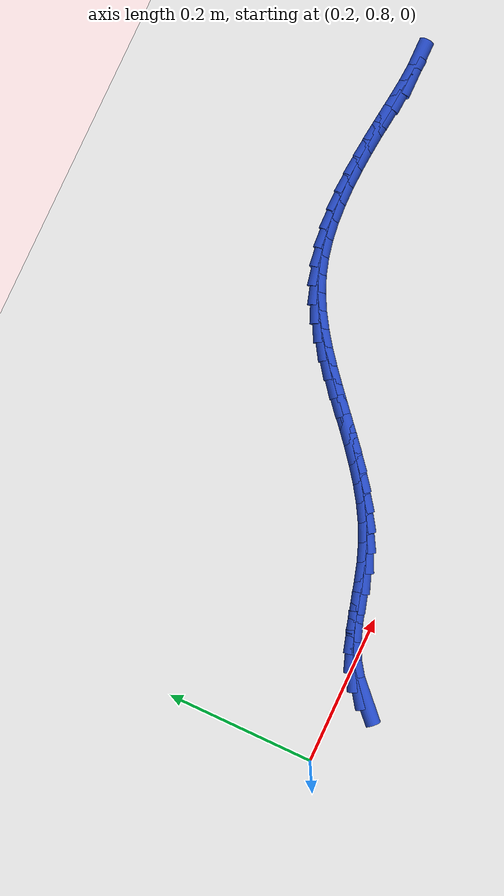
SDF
<sdf version="1.6">
 <world name="default">
  <model name="ground_plane">
   <static>1</static>
   <link name="link">
    <collision name="collision">
     <geometry><plane><normal>0 0 1</normal><size>100 100</size></plane></geometry>
     <surface><friction><ode><mu>100</mu><mu2>50</mu2></ode></friction></surface>
    </collision>
    <visual name="visual">
     <cast_shadows>0</cast_shadows>
     <geometry><plane><normal>0 0 1</normal><size>100 100</size></plane></geometry>
     <material>
      <script><uri>file://media/materials/scripts/gazebo.material</uri><name>Gazebo/WhiteGlow</name></script>
     </material>
    </visual>
   </link>
  </model>
  <model name="line">
   <link name="link_33">
    <pose>0.3068209848033757 0.7740678495897444 0.01 0 1.57 0.7680955369178402</pose>
    <collision name="collision">
     <geometry><cylinder><radius>0.01</radius><length>0.08</length></cylinder></geometry>
    </collision>
    <visual name="visual">
     <material>
      <script><name>Gazebo/Blue</name><uri>file://media/materials/scripts/gazebo.material</uri></script>
     </material>
     <geometry><cylinder><radius>0.01</radius><length>0.08</length></cylinder></geometry>
    </visual>
   </link>
   <link name="link_34">
    <pose>0.32314521265098634 0.7898367270029163 0.01 0 1.57 0.6127817458885213</pose>
    <collision name="collision">
     <geometry><cylinder><radius>0.01</radius><length>0.08</length></cylinder></geometry>
    </collision>
    <visual name="visual">
     <material>
      <script><name>Gazebo/Blue</name><uri>file://media/materials/scripts/gazebo.material</uri></script>
     </material>
     <geometry><cylinder><radius>0.01</radius><length>0.08</length></cylinder></geometry>
    </visual>
   </link>
   <link name="link_35">
    <pose>0.3418395248473881 0.8029800909614637 0.01 0 1.57 0.4562331163374501</pose>
    <collision name="collision">
     <geometry><cylinder><radius>0.01</radius><length>0.08</length></cylinder></geometry>
    </collision>
    <visual name="visual">
     <material>
      <script><name>Gazebo/Blue</name><uri>file://media/materials/scripts/gazebo.material</uri></script>
     </material>
     <geometry><cylinder><radius>0.01</radius><length>0.08</length></cylinder></geometry>
    </visual>
   </link>
   <link name="link_36">
    <pose>0.3630480060579663 0.813388491345508 0.01 0 1.57 0.34513263830318064</pose>
    <collision name="collision">
     <geometry><cylinder><radius>0.01</radius><length>0.08</length></cylinder></geometry>
    </collision>
    <visual name="visual">
     <material>
      <script><name>Gazebo/Blue</name><uri>file://media/materials/scripts/gazebo.material</uri></script>
     </material>
     <geometry><cylinder><radius>0.01</radius><length>0.08</length></cylinder></geometry>
    </visual>
   </link>
   <link name="link_37">
    <pose>0.3862714589177586 0.8217378409288465 0.01 0 1.57 0.28485016910019423</pose>
    <collision name="collision">
     <geometry><cylinder><radius>0.01</radius><length>0.08</length></cylinder></geometry>
    </collision>
    <visual name="visual">
     <material>
      <script><name>Gazebo/Blue</name><uri>file://media/materials/scripts/gazebo.material</uri></script>
     </material>
     <geometry><cylinder><radius>0.01</radius><length>0.08</length></cylinder></geometry>
    </visual>
   </link>
   <link name="link_38">
    <pose>0.41082719057515144 0.8289280763808236 0.01 0 1.57 0.2683520575616517</pose>
    <collision name="collision">
     <geometry><cylinder><radius>0.01</radius><length>0.08</length></cylinder></geometry>
    </collision>
    <visual name="visual">
     <material>
      <script><name>Gazebo/Blue</name><uri>file://media/materials/scripts/gazebo.material</uri></script>
     </material>
     <geometry><cylinder><radius>0.01</radius><length>0.08</length></cylinder></geometry>
    </visual>
   </link>
   <link name="link_39">
    <pose>0.436032494384066 0.8358591512120139 0.01 0 1.57 0.29219346268174373</pose>
    <collision name="collision">
     <geometry><cylinder><radius>0.01</radius><length>0.08</length></cylinder></geometry>
    </collision>
    <visual name="visual">
     <material>
      <script><name>Gazebo/Blue</name><uri>file://media/materials/scripts/gazebo.material</uri></script>
     </material>
     <geometry><cylinder><radius>0.01</radius><length>0.08</length></cylinder></geometry>
    </visual>
   </link>
   <link name="link_40">
    <pose>0.46120466369842356 0.843431018932993 0.01 0 1.57 0.35649394090297615</pose>
    <collision name="collision">
     <geometry><cylinder><radius>0.01</radius><length>0.08</length></cylinder></geometry>
    </collision>
    <visual name="visual">
     <material>
      <script><name>Gazebo/Blue</name><uri>file://media/materials/scripts/gazebo.material</uri></script>
     </material>
     <geometry><cylinder><radius>0.01</radius><length>0.08</length></cylinder></geometry>
    </visual>
   </link>
   <link name="link_41">
    <pose>0.4856637001289965 0.8525396941326364 0.01 0 1.57 0.44537588618805934</pose>
    <collision name="collision">
     <geometry><cylinder><radius>0.01</radius><length>0.08</length></cylinder></geometry>
    </collision>
    <visual name="visual">
     <material>
      <script><name>Gazebo/Blue</name><uri>file://media/materials/scripts/gazebo.material</uri></script>
     </material>
     <geometry><cylinder><radius>0.01</radius><length>0.08</length></cylinder></geometry>
    </visual>
   </link>
   <link name="link_42">
    <pose>0.5090043006838957 0.8636816710734182 0.01 0 1.57 0.5251237709512133</pose>
    <collision name="collision">
     <geometry><cylinder><radius>0.01</radius><length>0.08</length></cylinder></geometry>
    </collision>
    <visual name="visual">
     <material>
      <script><name>Gazebo/Blue</name><uri>file://media/materials/scripts/gazebo.material</uri></script>
     </material>
     <geometry><cylinder><radius>0.01</radius><length>0.08</length></cylinder></geometry>
    </visual>
   </link>
   <link name="link_43">
    <pose>0.5313282934927702 0.8766158663475309 0.01 0 1.57 0.5911054244074284</pose>
    <collision name="collision">
     <geometry><cylinder><radius>0.01</radius><length>0.08</length></cylinder></geometry>
    </collision>
    <visual name="visual">
     <material>
      <script><name>Gazebo/Blue</name><uri>file://media/materials/scripts/gazebo.material</uri></script>
     </material>
     <geometry><cylinder><radius>0.01</radius><length>0.08</length></cylinder></geometry>
    </visual>
   </link>
   <link name="link_44">
    <pose>0.5527922540091227 0.8910215713735858 0.01 0 1.57 0.6430733423428566</pose>
    <collision name="collision">
     <geometry><cylinder><radius>0.01</radius><length>0.08</length></cylinder></geometry>
    </collision>
    <visual name="visual">
     <material>
      <script><name>Gazebo/Blue</name><uri>file://media/materials/scripts/gazebo.material</uri></script>
     </material>
     <geometry><cylinder><radius>0.01</radius><length>0.08</length></cylinder></geometry>
    </visual>
   </link>
   <link name="link_45">
    <pose>0.5735527576864544 0.9065780775701938 0.01 0 1.57 0.6812139061971629</pose>
    <collision name="collision">
     <geometry><cylinder><radius>0.01</radius><length>0.08</length></cylinder></geometry>
    </collision>
    <visual name="visual">
     <material>
      <script><name>Gazebo/Blue</name><uri>file://media/materials/scripts/gazebo.material</uri></script>
     </material>
     <geometry><cylinder><radius>0.01</radius><length>0.08</length></cylinder></geometry>
    </visual>
   </link>
   <link name="link_46">
    <pose>0.5937663799782674 0.9229646763559662 0.01 0 1.57 0.705844480868185</pose>
    <collision name="collision">
     <geometry><cylinder><radius>0.01</radius><length>0.08</length></cylinder></geometry>
    </collision>
    <visual name="visual">
     <material>
      <script><name>Gazebo/Blue</name><uri>file://media/materials/scripts/gazebo.material</uri></script>
     </material>
     <geometry><cylinder><radius>0.01</radius><length>0.08</length></cylinder></geometry>
    </visual>
   </link>
   <link name="link_47">
    <pose>0.6135896963380639 0.9398606591495142 0.01 0 1.57 0.7172019870252846</pose>
    <collision name="collision">
     <geometry><cylinder><radius>0.01</radius><length>0.08</length></cylinder></geometry>
    </collision>
    <visual name="visual">
     <material>
      <script><name>Gazebo/Blue</name><uri>file://media/materials/scripts/gazebo.material</uri></script>
     </material>
     <geometry><cylinder><radius>0.01</radius><length>0.08</length></cylinder></geometry>
    </visual>
   </link>
   <link name="link_48">
    <pose>0.6331792822193455 0.9569453173694485 0.01 0 1.57 0.7153142622757979</pose>
    <collision name="collision">
     <geometry><cylinder><radius>0.01</radius><length>0.08</length></cylinder></geometry>
    </collision>
    <visual name="visual">
     <material>
      <script><name>Gazebo/Blue</name><uri>file://media/materials/scripts/gazebo.material</uri></script>
     </material>
     <geometry><cylinder><radius>0.01</radius><length>0.08</length></cylinder></geometry>
    </visual>
   </link>
   <link name="link_49">
    <pose>0.6526917130756145 0.9738979424343805 0.01 0 1.57 0.6999371337386757</pose>
    <collision name="collision">
     <geometry><cylinder><radius>0.01</radius><length>0.08</length></cylinder></geometry>
    </collision>
    <visual name="visual">
     <material>
      <script><name>Gazebo/Blue</name><uri>file://media/materials/scripts/gazebo.material</uri></script>
     </material>
     <geometry><cylinder><radius>0.01</radius><length>0.08</length></cylinder></geometry>
    </visual>
   </link>
   <link name="link_50">
    <pose>0.6722835643603724 0.9903978257629216 0.01 0 1.57 0.6705493919131295</pose>
    <collision name="collision">
     <geometry><cylinder><radius>0.01</radius><length>0.08</length></cylinder></geometry>
    </collision>
    <visual name="visual">
     <material>
      <script><name>Gazebo/Blue</name><uri>file://media/materials/scripts/gazebo.material</uri></script>
     </material>
     <geometry><cylinder><radius>0.01</radius><length>0.08</length></cylinder></geometry>
    </visual>
   </link>
   <link name="link_51">
    <pose>0.6921114115271211 1.006124258773682 0.01 0 1.57 0.6264152194766989</pose>
    <collision name="collision">
     <geometry><cylinder><radius>0.01</radius><length>0.08</length></cylinder></geometry>
    </collision>
    <visual name="visual">
     <material>
      <script><name>Gazebo/Blue</name><uri>file://media/materials/scripts/gazebo.material</uri></script>
     </material>
     <geometry><cylinder><radius>0.01</radius><length>0.08</length></cylinder></geometry>
    </visual>
   </link>
   <link name="link_52">
    <pose>0.7123318300293627 1.0207565328852735 0.01 0 1.57 0.5667432863231895</pose>
    <collision name="collision">
     <geometry><cylinder><radius>0.01</radius><length>0.08</length></cylinder></geometry>
    </collision>
    <visual name="visual">
     <material>
      <script><name>Gazebo/Blue</name><uri>file://media/materials/scripts/gazebo.material</uri></script>
     </material>
     <geometry><cylinder><radius>0.01</radius><length>0.08</length></cylinder></geometry>
    </visual>
   </link>
   <link name="link_53">
    <pose>0.7331013953205993 1.033973939516307 0.01 0 1.57 0.49098431802284925</pose>
    <collision name="collision">
     <geometry><cylinder><radius>0.01</radius><length>0.08</length></cylinder></geometry>
    </collision>
    <visual name="visual">
     <material>
      <script><name>Gazebo/Blue</name><uri>file://media/materials/scripts/gazebo.material</uri></script>
     </material>
     <geometry><cylinder><radius>0.01</radius><length>0.08</length></cylinder></geometry>
    </visual>
   </link>
   <link name="link_54">
    <pose>0.7545766828543325 1.0454557700853937 0.01 0 1.57 0.3992969907596642</pose>
    <collision name="collision">
     <geometry><cylinder><radius>0.01</radius><length>0.08</length></cylinder></geometry>
    </collision>
    <visual name="visual">
     <material>
      <script><name>Gazebo/Blue</name><uri>file://media/materials/scripts/gazebo.material</uri></script>
     </material>
     <geometry><cylinder><radius>0.01</radius><length>0.08</length></cylinder></geometry>
    </visual>
   </link>
   <link name="link_55">
    <pose>0.7769142116030038 1.0548814207085924 0.01 0 1.57 0.2987789686109148</pose>
    <collision name="collision">
     <geometry><cylinder><radius>0.01</radius><length>0.08</length></cylinder></geometry>
    </collision>
    <visual name="visual">
     <material>
      <script><name>Gazebo/Blue</name><uri>file://media/materials/scripts/gazebo.material</uri></script>
     </material>
     <geometry><cylinder><radius>0.01</radius><length>0.08</length></cylinder></geometry>
    </visual>
   </link>
   <link name="link_56">
    <pose>0.8002034949560083 1.0620544939793517 0.01 0 1.57 0.20780776273310692</pose>
    <collision name="collision">
     <geometry><cylinder><radius>0.01</radius><length>0.08</length></cylinder></geometry>
    </collision>
    <visual name="visual">
     <material>
      <script><name>Gazebo/Blue</name><uri>file://media/materials/scripts/gazebo.material</uri></script>
     </material>
     <geometry><cylinder><radius>0.01</radius><length>0.08</length></cylinder></geometry>
    </visual>
   </link>
   <link name="link_57">
    <pose>0.8243373719606256 1.0671431625182124 0.01 0 1.57 0.12968598027694428</pose>
    <collision name="collision">
     <geometry><cylinder><radius>0.01</radius><length>0.08</length></cylinder></geometry>
    </collision>
    <visual name="visual">
     <material>
      <script><name>Gazebo/Blue</name><uri>file://media/materials/scripts/gazebo.material</uri></script>
     </material>
     <geometry><cylinder><radius>0.01</radius><length>0.08</length></cylinder></geometry>
    </visual>
   </link>
   <link name="link_58">
    <pose>0.849172781782196 1.0703821456075273 0.01 0 1.57 0.06386610277903262</pose>
    <collision name="collision">
     <geometry><cylinder><radius>0.01</radius><length>0.08</length></cylinder></geometry>
    </collision>
    <visual name="visual">
     <material>
      <script><name>Gazebo/Blue</name><uri>file://media/materials/scripts/gazebo.material</uri></script>
     </material>
     <geometry><cylinder><radius>0.01</radius><length>0.08</length></cylinder></geometry>
    </visual>
   </link>
   <link name="link_59">
    <pose>0.8745666635860594 1.0720061625296498 0.01 0 1.57 0.00944476818117881</pose>
    <collision name="collision">
     <geometry><cylinder><radius>0.01</radius><length>0.08</length></cylinder></geometry>
    </collision>
    <visual name="visual">
     <material>
      <script><name>Gazebo/Blue</name><uri>file://media/materials/scripts/gazebo.material</uri></script>
     </material>
     <geometry><cylinder><radius>0.01</radius><length>0.08</length></cylinder></geometry>
    </visual>
   </link>
   <link name="link_60">
    <pose>0.9003759565375553 1.072249932566932 0.01 0 1.57 -0.03456064850577868</pose>
    <collision name="collision">
     <geometry><cylinder><radius>0.01</radius><length>0.08</length></cylinder></geometry>
    </collision>
    <visual name="visual">
     <material>
      <script><name>Gazebo/Blue</name><uri>file://media/materials/scripts/gazebo.material</uri></script>
     </material>
     <geometry><cylinder><radius>0.01</radius><length>0.08</length></cylinder></geometry>
    </visual>
   </link>
   <link name="link_61">
    <pose>0.9264575998020237 1.0713481750017275 0.01 0 1.57 -0.0690431297552558</pose>
    <collision name="collision">
     <geometry><cylinder><radius>0.01</radius><length>0.08</length></cylinder></geometry>
    </collision>
    <visual name="visual">
     <material>
      <script><name>Gazebo/Blue</name><uri>file://media/materials/scripts/gazebo.material</uri></script>
     </material>
     <geometry><cylinder><radius>0.01</radius><length>0.08</length></cylinder></geometry>
    </visual>
   </link>
   <link name="link_62">
    <pose>0.9526685325448041 1.0695356091163883 0.01 0 1.57 -0.09471289323147636</pose>
    <collision name="collision">
     <geometry><cylinder><radius>0.01</radius><length>0.08</length></cylinder></geometry>
    </collision>
    <visual name="visual">
     <material>
      <script><name>Gazebo/Blue</name><uri>file://media/materials/scripts/gazebo.material</uri></script>
     </material>
     <geometry><cylinder><radius>0.01</radius><length>0.08</length></cylinder></geometry>
    </visual>
   </link>
   <link name="link_63">
    <pose>0.9788656939312367 1.067046954193268 0.01 0 1.57 -0.11204745483626488</pose>
    <collision name="collision">
     <geometry><cylinder><radius>0.01</radius><length>0.08</length></cylinder></geometry>
    </collision>
    <visual name="visual">
     <material>
      <script><name>Gazebo/Blue</name><uri>file://media/materials/scripts/gazebo.material</uri></script>
     </material>
     <geometry><cylinder><radius>0.01</radius><length>0.08</length></cylinder></geometry>
    </visual>
   </link>
   <link name="link_64">
    <pose>1.0049060231266613 1.0641169295147193 0.01 0 1.57 -0.120759438822624</pose>
    <collision name="collision">
     <geometry><cylinder><radius>0.01</radius><length>0.08</length></cylinder></geometry>
    </collision>
    <visual name="visual">
     <material>
      <script><name>Gazebo/Blue</name><uri>file://media/materials/scripts/gazebo.material</uri></script>
     </material>
     <geometry><cylinder><radius>0.01</radius><length>0.08</length></cylinder></geometry>
    </visual>
   </link>
   <link name="link_65">
    <pose>1.030652075643724 1.0609926489121884 0.01 0 1.57 -0.1099137533340716</pose>
    <collision name="collision">
     <geometry><cylinder><radius>0.01</radius><length>0.08</length></cylinder></geometry>
    </collision>
    <visual name="visual">
     <material>
      <script><name>Gazebo/Blue</name><uri>file://media/materials/scripts/gazebo.material</uri></script>
     </material>
     <geometry><cylinder><radius>0.01</radius><length>0.08</length></cylinder></geometry>
    </visual>
   </link>
   <link name="link_66">
    <pose>1.056086278800829 1.058185767724326 0.01 0 1.57 -0.06826148288743385</pose>
    <collision name="collision">
     <geometry><cylinder><radius>0.01</radius><length>0.08</length></cylinder></geometry>
    </collision>
    <visual name="visual">
     <material>
      <script><name>Gazebo/Blue</name><uri>file://media/materials/scripts/gazebo.material</uri></script>
     </material>
     <geometry><cylinder><radius>0.01</radius><length>0.08</length></cylinder></geometry>
    </visual>
   </link>
   <link name="link_67">
    <pose>1.0813059798399405 1.0564615546360925 0.01 0 1.57 0.005334337362546125</pose>
    <collision name="collision">
     <geometry><cylinder><radius>0.01</radius><length>0.08</length></cylinder></geometry>
    </collision>
    <visual name="visual">
     <material>
      <script><name>Gazebo/Blue</name><uri>file://media/materials/scripts/gazebo.material</uri></script>
     </material>
     <geometry><cylinder><radius>0.01</radius><length>0.08</length></cylinder></geometry>
    </visual>
   </link>
  </model>
 </world>
</sdf>
